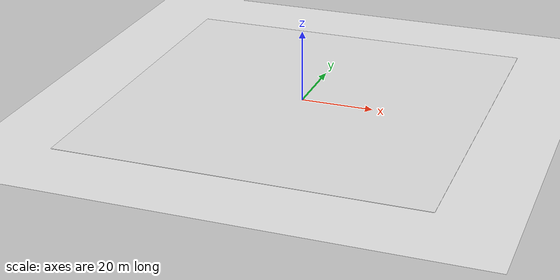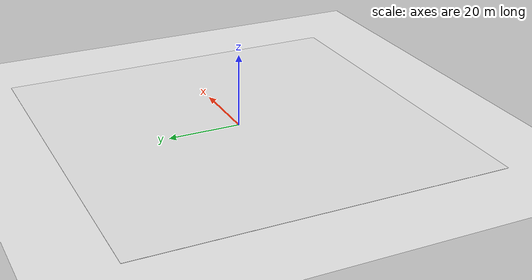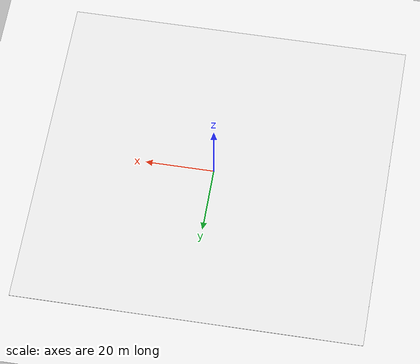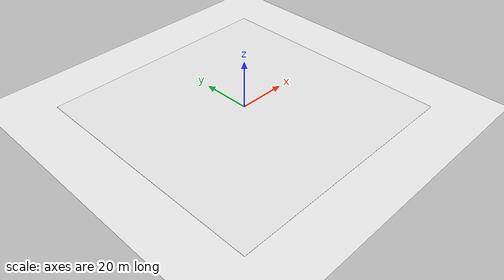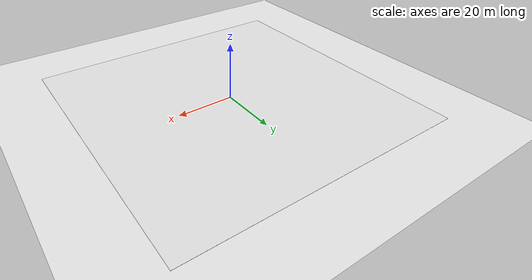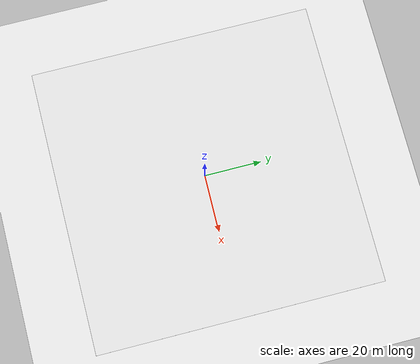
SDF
<?xml version="1.0" ?>
<sdf version="1.6">
  <world name="default">

    <!-- 物理引擎设置 -->
    <physics type='ode'>
      <max_step_size>0.004</max_step_size>
      <real_time_factor>1</real_time_factor>
      <real_time_update_rate>250</real_time_update_rate>
    </physics>

    <gravity>0 0 -9.8066</gravity>
    <magnetic_field>6e-06 2.3e-05 -4.2e-05</magnetic_field>
    <atmosphere type='adiabatic'/>

    <!-- 环境光照 -->
    <scene>
      <ambient>0.4 0.4 0.4 1</ambient>
      <background>0.7 0.7 0.7 1</background>
      <shadows>true</shadows>
      <grid>false</grid>
    </scene>

    <!-- 太阳光 -->
    <light type="directional" name="sun">
      <cast_shadows>true</cast_shadows>
      <pose>0 0 100 0 0 0</pose>
      <diffuse>0.8 0.8 0.8 1</diffuse>
      <specular>0.2 0.2 0.2 1</specular>
      <attenuation>
        <range>1000</range>
        <constant>0.9</constant>
        <linear>0.01</linear>
        <quadratic>0.001</quadratic>
      </attenuation>
      <direction>-0.5 0.1 -0.9</direction>
    </light>

    <!-- 灰色地面平面 -->
    <model name="ground_plane">
      <static>true</static>
      <link name="link">
        <collision name="collision">
          <geometry>
            <plane>
              <normal>0 0 1</normal>
              <size>100 100</size>
            </plane>
          </geometry>
          <surface>
            <friction>
              <ode>
                <mu>100</mu>
                <mu2>50</mu2>
              </ode>
            </friction>
          </surface>
        </collision>
        <visual name="visual">
          <cast_shadows>false</cast_shadows>
          <geometry>
            <plane>
              <normal>0 0 1</normal>
              <size>100 100</size>
            </plane>
          </geometry>
          <material>
            <script>
              <uri>file://media/materials/scripts/gazebo.material</uri>
              <name>Gazebo/White</name>
            </script>
          </material>
        </visual>
      </link>
    </model>

    <model name="grid_plane">
      <static>true</static>
      <pose>0 0 0.01 0 0 0</pose>
      <link name="link">
        <visual name="grid_visual">
          <cast_shadows>false</cast_shadows>
          <geometry>
            <plane>
              <normal>0 0 1</normal>
              <size>100 100</size>
            </plane>
          </geometry>
          <material>
            <!-- 环境光和漫反射较亮，略带灰色，避免纯白过曝 -->
            <ambient>0.9 0.9 0.9 1</ambient>
            <diffuse>0.9 0.9 0.9 1</diffuse>
            <specular>0.1 0.1 0.1 1</specular>
          </material>
        </visual>

        <!-- 添加可视化网格线 -->
        <visual name="grid_lines">
          <geometry>
            <plane>
              <normal>0 0 1</normal>
              <size>100 100</size>
            </plane>
          </geometry>
          <material>
          <script>
              <uri>file://media/materials/scripts/gazebo.material</uri>
              <name>Gazebo/Grid</name>
          </script>
          <transparency>0.3</transparency>
          </material>
        </visual>
      </link>
    </model>

    <!-- GUI设置 -->
    <gui fullscreen='0'>
      <camera name='user_camera'>
        <pose>10 -10 8 0 0.4 2.35</pose>
        <view_controller>orbit</view_controller>
      </camera>
    </gui>

  </world>
</sdf>
